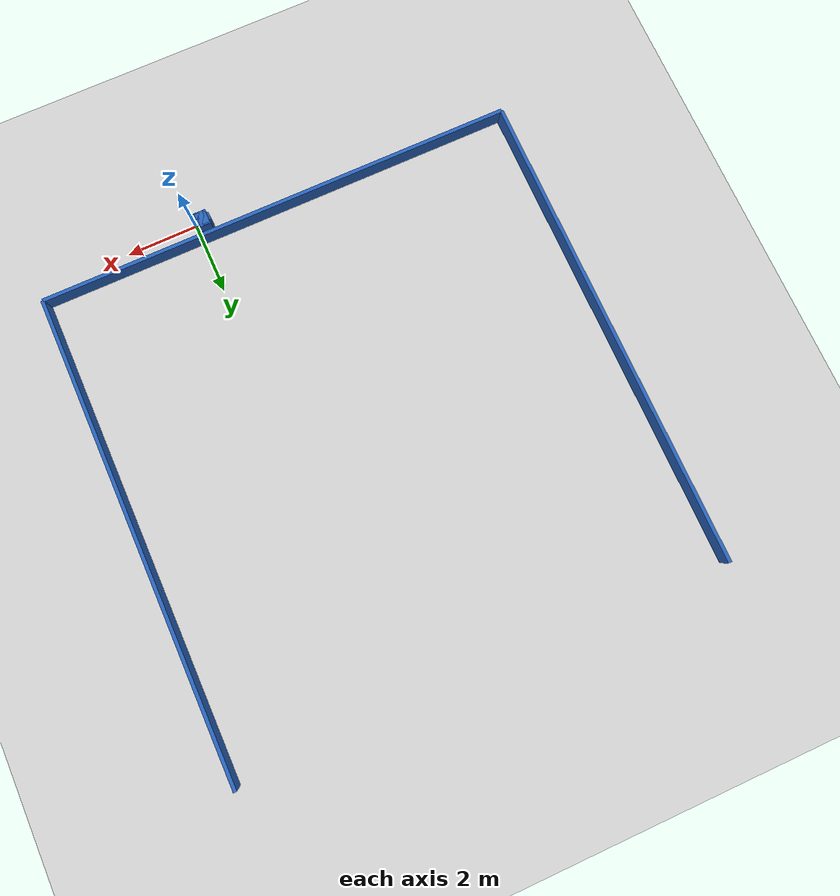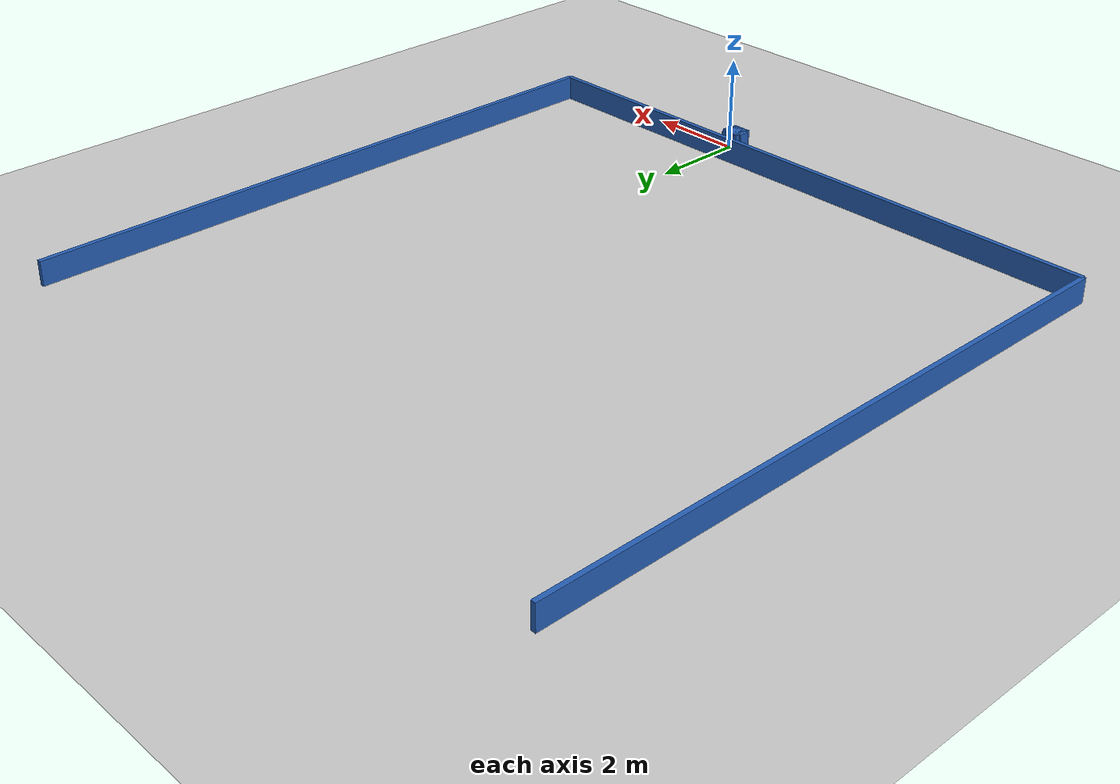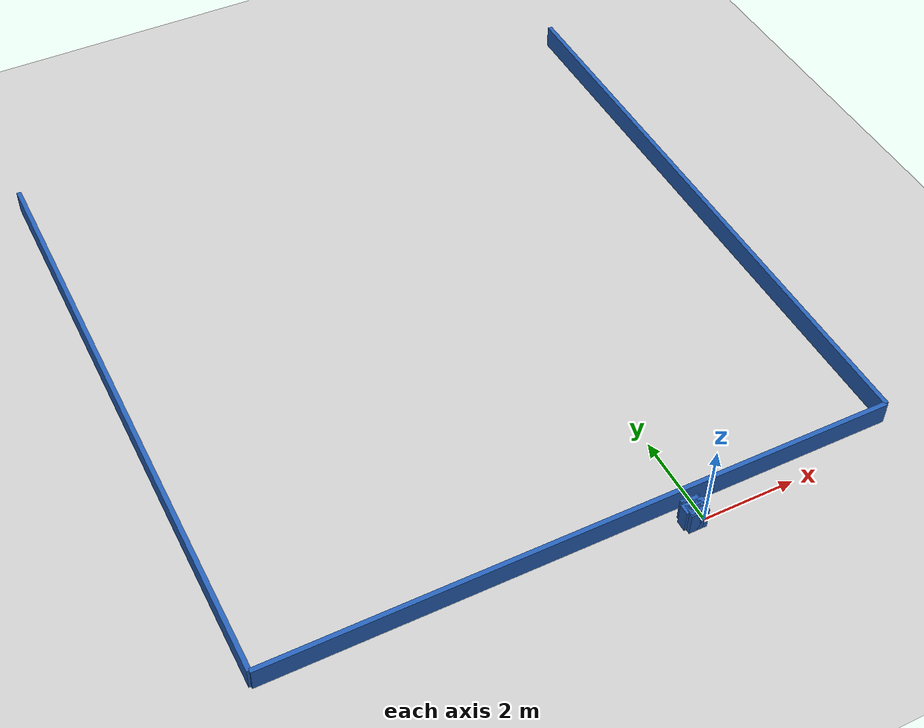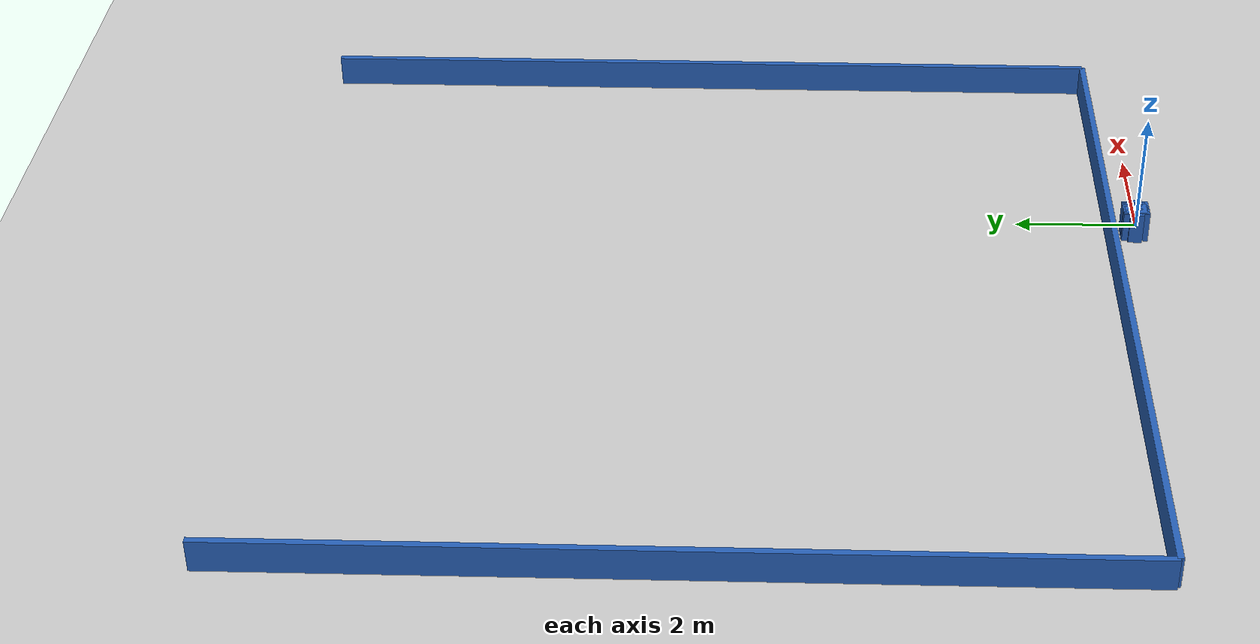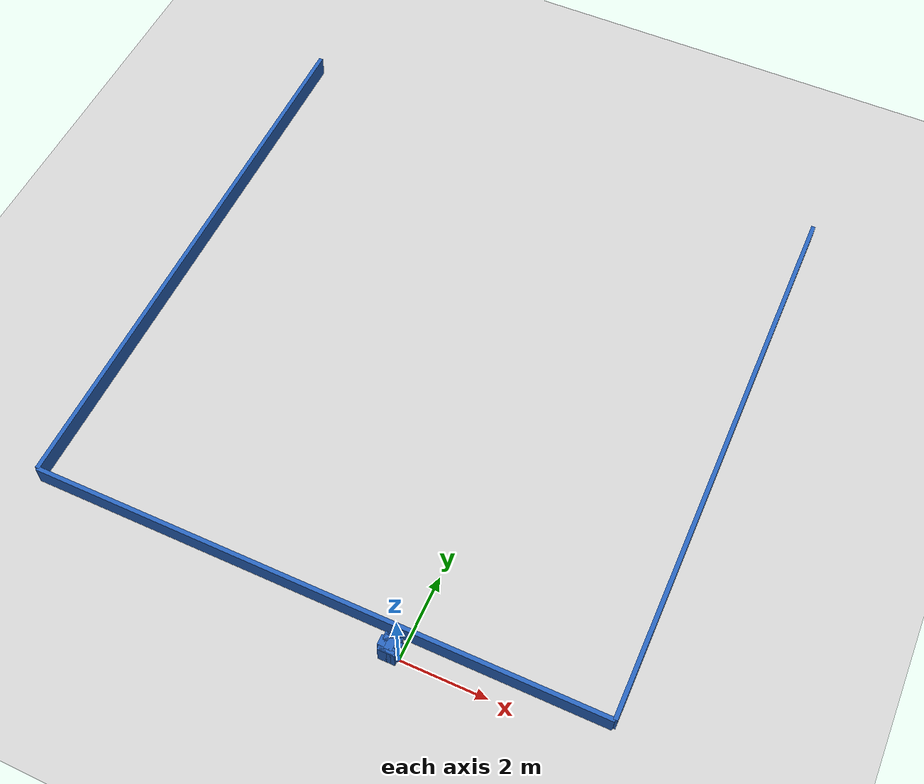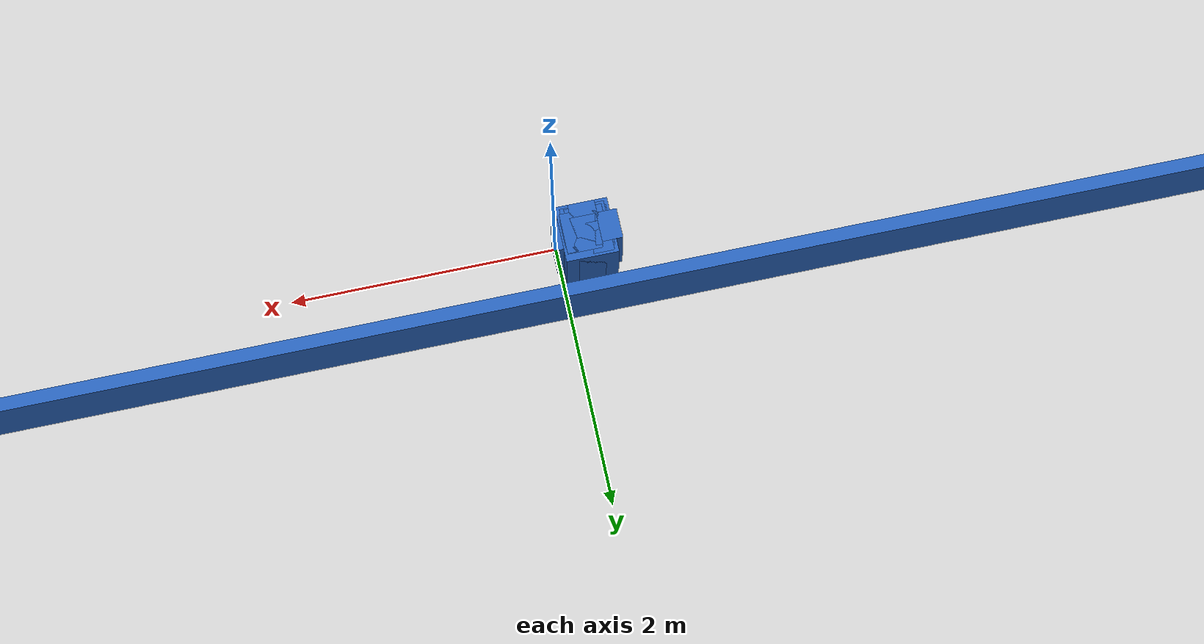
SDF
<?xml version="1.0" ?>
    <sdf version="1.5">
      <world name="default">
        <!-- A global light source -->
        <include>
          <uri>model://sun</uri>
        </include>
        <!-- A ground plane -->
        <include>
          <uri>model://ground_plane</uri>
        </include>

    <model name='libopen_space_final_T2B_81_89'>
      <static>1</static>
      <pose frame=''>-0.225000 0.075000 0.000000 0.000000 0.000000 0.000000</pose>
      <link name='link'>
        <inertial>
          <mass>1</mass>
          <inertia>
            <ixx>0.145833</ixx>
            <ixy>0</ixy>
            <ixz>0</ixz>
            <iyy>0.145833</iyy>
            <iyz>0</iyz>
            <izz>0.125</izz>
          </inertia>
        </inertial>
        <collision name='collision'>
          <geometry>
            <box>
              <size>0.35 0.32 1</size>
            </box>
          </geometry>
          <max_contacts>10</max_contacts>
          <surface>
            <contact>
              <ode/>
            </contact>
            <bounce/>
            <friction>
              <torsional>
                <ode/>
              </torsional>
              <ode/>
            </friction>
          </surface>
        </collision>
        <visual name='visual'>
          <geometry>
            <box>
              <size>0.35 0.32 1</size>
            </box>
          </geometry>
	    <material>
              <ambient>0.152000 0.379000 0.720000 1</ambient>
	      <diffuse>0.152000 0.379000 0.720000 1</diffuse>
          </material>
          <material>
            <script>
              <name>Gazebo/Grey</name>
              <uri>file://media/materials/scripts/gazebo.material</uri>
            </script>
          </material>
        </visual>
        <self_collide>0</self_collide>
        <kinematic>0</kinematic>
        <gravity>1</gravity>
      </link>
      <plugin name='libopen_space_final_T2B_81_89' filename='libopen_space_final_T2B_81_89.so'/>
    </model>

    <model name='libopen_space_final_T2B_112_28'>
      <static>1</static>
      <pose frame=''>-0.225000 0.075000 0.000000 0.000000 0.000000 0.000000</pose>
      <link name='link'>
        <inertial>
          <mass>1</mass>
          <inertia>
            <ixx>0.145833</ixx>
            <ixy>0</ixy>
            <ixz>0</ixz>
            <iyy>0.145833</iyy>
            <iyz>0</iyz>
            <izz>0.125</izz>
          </inertia>
        </inertial>
        <collision name='collision'>
          <geometry>
            <box>
              <size>0.18 0.27 1</size>
            </box>
          </geometry>
          <max_contacts>10</max_contacts>
          <surface>
            <contact>
              <ode/>
            </contact>
            <bounce/>
            <friction>
              <torsional>
                <ode/>
              </torsional>
              <ode/>
            </friction>
          </surface>
        </collision>
        <visual name='visual'>
          <geometry>
            <box>
              <size>0.18 0.27 1</size>
            </box>
          </geometry>
	    <material>
              <ambient>0.152000 0.379000 0.720000 1</ambient>
	      <diffuse>0.152000 0.379000 0.720000 1</diffuse>
          </material>
          <material>
            <script>
              <name>Gazebo/Grey</name>
              <uri>file://media/materials/scripts/gazebo.material</uri>
            </script>
          </material>
        </visual>
        <self_collide>0</self_collide>
        <kinematic>0</kinematic>
        <gravity>1</gravity>
      </link>
      <plugin name='libopen_space_final_T2B_112_28' filename='libopen_space_final_T2B_112_28.so'/>
    </model>

    <model name='libopen_space_final_T2B_67_47'>
      <static>1</static>
      <pose frame=''>-0.225000 0.075000 0.000000 0.000000 0.000000 0.000000</pose>
      <link name='link'>
        <inertial>
          <mass>1</mass>
          <inertia>
            <ixx>0.145833</ixx>
            <ixy>0</ixy>
            <ixz>0</ixz>
            <iyy>0.145833</iyy>
            <iyz>0</iyz>
            <izz>0.125</izz>
          </inertia>
        </inertial>
        <collision name='collision'>
          <geometry>
            <box>
              <size>0.20 0.43 1</size>
            </box>
          </geometry>
          <max_contacts>10</max_contacts>
          <surface>
            <contact>
              <ode/>
            </contact>
            <bounce/>
            <friction>
              <torsional>
                <ode/>
              </torsional>
              <ode/>
            </friction>
          </surface>
        </collision>
        <visual name='visual'>
          <geometry>
            <box>
              <size>0.20 0.43 1</size>
            </box>
          </geometry>
	    <material>
              <ambient>0.152000 0.379000 0.720000 1</ambient>
	      <diffuse>0.152000 0.379000 0.720000 1</diffuse>
          </material>
          <material>
            <script>
              <name>Gazebo/Grey</name>
              <uri>file://media/materials/scripts/gazebo.material</uri>
            </script>
          </material>
        </visual>
        <self_collide>0</self_collide>
        <kinematic>0</kinematic>
        <gravity>1</gravity>
      </link>
      <plugin name='libopen_space_final_T2B_67_47' filename='libopen_space_final_T2B_67_47.so'/>
    </model>

    <model name='libopen_space_final_T2B_129_21'>
      <static>1</static>
      <pose frame=''>-0.225000 0.075000 0.000000 0.000000 0.000000 0.000000</pose>
      <link name='link'>
        <inertial>
          <mass>1</mass>
          <inertia>
            <ixx>0.145833</ixx>
            <ixy>0</ixy>
            <ixz>0</ixz>
            <iyy>0.145833</iyy>
            <iyz>0</iyz>
            <izz>0.125</izz>
          </inertia>
        </inertial>
        <collision name='collision'>
          <geometry>
            <box>
              <size>0.49 0.23 1</size>
            </box>
          </geometry>
          <max_contacts>10</max_contacts>
          <surface>
            <contact>
              <ode/>
            </contact>
            <bounce/>
            <friction>
              <torsional>
                <ode/>
              </torsional>
              <ode/>
            </friction>
          </surface>
        </collision>
        <visual name='visual'>
          <geometry>
            <box>
              <size>0.49 0.23 1</size>
            </box>
          </geometry>
	    <material>
              <ambient>0.152000 0.379000 0.720000 1</ambient>
	      <diffuse>0.152000 0.379000 0.720000 1</diffuse>
          </material>
          <material>
            <script>
              <name>Gazebo/Grey</name>
              <uri>file://media/materials/scripts/gazebo.material</uri>
            </script>
          </material>
        </visual>
        <self_collide>0</self_collide>
        <kinematic>0</kinematic>
        <gravity>1</gravity>
      </link>
      <plugin name='libopen_space_final_T2B_129_21' filename='libopen_space_final_T2B_129_21.so'/>
    </model>

    <model name='libopen_space_final_T2B_112_81'>
      <static>1</static>
      <pose frame=''>-0.225000 0.075000 0.000000 0.000000 0.000000 0.000000</pose>
      <link name='link'>
        <inertial>
          <mass>1</mass>
          <inertia>
            <ixx>0.145833</ixx>
            <ixy>0</ixy>
            <ixz>0</ixz>
            <iyy>0.145833</iyy>
            <iyz>0</iyz>
            <izz>0.125</izz>
          </inertia>
        </inertial>
        <collision name='collision'>
          <geometry>
            <box>
              <size>0.24 0.22 1</size>
            </box>
          </geometry>
          <max_contacts>10</max_contacts>
          <surface>
            <contact>
              <ode/>
            </contact>
            <bounce/>
            <friction>
              <torsional>
                <ode/>
              </torsional>
              <ode/>
            </friction>
          </surface>
        </collision>
        <visual name='visual'>
          <geometry>
            <box>
              <size>0.24 0.22 1</size>
            </box>
          </geometry>
	    <material>
              <ambient>0.152000 0.379000 0.720000 1</ambient>
	      <diffuse>0.152000 0.379000 0.720000 1</diffuse>
          </material>
          <material>
            <script>
              <name>Gazebo/Grey</name>
              <uri>file://media/materials/scripts/gazebo.material</uri>
            </script>
          </material>
        </visual>
        <self_collide>0</self_collide>
        <kinematic>0</kinematic>
        <gravity>1</gravity>
      </link>
      <plugin name='libopen_space_final_T2B_112_81' filename='libopen_space_final_T2B_112_81.so'/>
    </model>

    <model name='libopen_space_final_T2B_111_18'>
      <static>1</static>
      <pose frame=''>-0.225000 0.075000 0.000000 0.000000 0.000000 0.000000</pose>
      <link name='link'>
        <inertial>
          <mass>1</mass>
          <inertia>
            <ixx>0.145833</ixx>
            <ixy>0</ixy>
            <ixz>0</ixz>
            <iyy>0.145833</iyy>
            <iyz>0</iyz>
            <izz>0.125</izz>
          </inertia>
        </inertial>
        <collision name='collision'>
          <geometry>
            <box>
              <size>0.27 0.37 1</size>
            </box>
          </geometry>
          <max_contacts>10</max_contacts>
          <surface>
            <contact>
              <ode/>
            </contact>
            <bounce/>
            <friction>
              <torsional>
                <ode/>
              </torsional>
              <ode/>
            </friction>
          </surface>
        </collision>
        <visual name='visual'>
          <geometry>
            <box>
              <size>0.27 0.37 1</size>
            </box>
          </geometry>
	    <material>
              <ambient>0.152000 0.379000 0.720000 1</ambient>
	      <diffuse>0.152000 0.379000 0.720000 1</diffuse>
          </material>
          <material>
            <script>
              <name>Gazebo/Grey</name>
              <uri>file://media/materials/scripts/gazebo.material</uri>
            </script>
          </material>
        </visual>
        <self_collide>0</self_collide>
        <kinematic>0</kinematic>
        <gravity>1</gravity>
      </link>
      <plugin name='libopen_space_final_T2B_111_18' filename='libopen_space_final_T2B_111_18.so'/>
    </model>

    <model name='libopen_space_final_T2B_83_17'>
      <static>1</static>
      <pose frame=''>-0.225000 0.075000 0.000000 0.000000 0.000000 0.000000</pose>
      <link name='link'>
        <inertial>
          <mass>1</mass>
          <inertia>
            <ixx>0.145833</ixx>
            <ixy>0</ixy>
            <ixz>0</ixz>
            <iyy>0.145833</iyy>
            <iyz>0</iyz>
            <izz>0.125</izz>
          </inertia>
        </inertial>
        <collision name='collision'>
          <geometry>
            <box>
              <size>0.29 0.35 1</size>
            </box>
          </geometry>
          <max_contacts>10</max_contacts>
          <surface>
            <contact>
              <ode/>
            </contact>
            <bounce/>
            <friction>
              <torsional>
                <ode/>
              </torsional>
              <ode/>
            </friction>
          </surface>
        </collision>
        <visual name='visual'>
          <geometry>
            <box>
              <size>0.29 0.35 1</size>
            </box>
          </geometry>
	    <material>
              <ambient>0.152000 0.379000 0.720000 1</ambient>
	      <diffuse>0.152000 0.379000 0.720000 1</diffuse>
          </material>
          <material>
            <script>
              <name>Gazebo/Grey</name>
              <uri>file://media/materials/scripts/gazebo.material</uri>
            </script>
          </material>
        </visual>
        <self_collide>0</self_collide>
        <kinematic>0</kinematic>
        <gravity>1</gravity>
      </link>
      <plugin name='libopen_space_final_T2B_83_17' filename='libopen_space_final_T2B_83_17.so'/>
    </model>

    <model name='libopen_space_final_T2B_51_63'>
      <static>1</static>
      <pose frame=''>-0.225000 0.075000 0.000000 0.000000 0.000000 0.000000</pose>
      <link name='link'>
        <inertial>
          <mass>1</mass>
          <inertia>
            <ixx>0.145833</ixx>
            <ixy>0</ixy>
            <ixz>0</ixz>
            <iyy>0.145833</iyy>
            <iyz>0</iyz>
            <izz>0.125</izz>
          </inertia>
        </inertial>
        <collision name='collision'>
          <geometry>
            <box>
              <size>0.33 0.39 1</size>
            </box>
          </geometry>
          <max_contacts>10</max_contacts>
          <surface>
            <contact>
              <ode/>
            </contact>
            <bounce/>
            <friction>
              <torsional>
                <ode/>
              </torsional>
              <ode/>
            </friction>
          </surface>
        </collision>
        <visual name='visual'>
          <geometry>
            <box>
              <size>0.33 0.39 1</size>
            </box>
          </geometry>
	    <material>
              <ambient>0.152000 0.379000 0.720000 1</ambient>
	      <diffuse>0.152000 0.379000 0.720000 1</diffuse>
          </material>
          <material>
            <script>
              <name>Gazebo/Grey</name>
              <uri>file://media/materials/scripts/gazebo.material</uri>
            </script>
          </material>
        </visual>
        <self_collide>0</self_collide>
        <kinematic>0</kinematic>
        <gravity>1</gravity>
      </link>
      <plugin name='libopen_space_final_T2B_51_63' filename='libopen_space_final_T2B_51_63.so'/>
    </model>

    <model name='libopen_space_final_T2B_73_9'>
      <static>1</static>
      <pose frame=''>-0.225000 0.075000 0.000000 0.000000 0.000000 0.000000</pose>
      <link name='link'>
        <inertial>
          <mass>1</mass>
          <inertia>
            <ixx>0.145833</ixx>
            <ixy>0</ixy>
            <ixz>0</ixz>
            <iyy>0.145833</iyy>
            <iyz>0</iyz>
            <izz>0.125</izz>
          </inertia>
        </inertial>
        <collision name='collision'>
          <geometry>
            <box>
              <size>0.13 0.37 1</size>
            </box>
          </geometry>
          <max_contacts>10</max_contacts>
          <surface>
            <contact>
              <ode/>
            </contact>
            <bounce/>
            <friction>
              <torsional>
                <ode/>
              </torsional>
              <ode/>
            </friction>
          </surface>
        </collision>
        <visual name='visual'>
          <geometry>
            <box>
              <size>0.13 0.37 1</size>
            </box>
          </geometry>
	    <material>
              <ambient>0.152000 0.379000 0.720000 1</ambient>
	      <diffuse>0.152000 0.379000 0.720000 1</diffuse>
          </material>
          <material>
            <script>
              <name>Gazebo/Grey</name>
              <uri>file://media/materials/scripts/gazebo.material</uri>
            </script>
          </material>
        </visual>
        <self_collide>0</self_collide>
        <kinematic>0</kinematic>
        <gravity>1</gravity>
      </link>
      <plugin name='libopen_space_final_T2B_73_9' filename='libopen_space_final_T2B_73_9.so'/>
    </model>

    <model name='libopen_space_final_T2B_67_46'>
      <static>1</static>
      <pose frame=''>-0.225000 0.075000 0.000000 0.000000 0.000000 0.000000</pose>
      <link name='link'>
        <inertial>
          <mass>1</mass>
          <inertia>
            <ixx>0.145833</ixx>
            <ixy>0</ixy>
            <ixz>0</ixz>
            <iyy>0.145833</iyy>
            <iyz>0</iyz>
            <izz>0.125</izz>
          </inertia>
        </inertial>
        <collision name='collision'>
          <geometry>
            <box>
              <size>0.39 0.43 1</size>
            </box>
          </geometry>
          <max_contacts>10</max_contacts>
          <surface>
            <contact>
              <ode/>
            </contact>
            <bounce/>
            <friction>
              <torsional>
                <ode/>
              </torsional>
              <ode/>
            </friction>
          </surface>
        </collision>
        <visual name='visual'>
          <geometry>
            <box>
              <size>0.39 0.43 1</size>
            </box>
          </geometry>
	    <material>
              <ambient>0.152000 0.379000 0.720000 1</ambient>
	      <diffuse>0.152000 0.379000 0.720000 1</diffuse>
          </material>
          <material>
            <script>
              <name>Gazebo/Grey</name>
              <uri>file://media/materials/scripts/gazebo.material</uri>
            </script>
          </material>
        </visual>
        <self_collide>0</self_collide>
        <kinematic>0</kinematic>
        <gravity>1</gravity>
      </link>
      <plugin name='libopen_space_final_T2B_67_46' filename='libopen_space_final_T2B_67_46.so'/>
    </model>

    <model name='libopen_space_final_T2B_90_76'>
      <static>1</static>
      <pose frame=''>-0.225000 0.075000 0.000000 0.000000 0.000000 0.000000</pose>
      <link name='link'>
        <inertial>
          <mass>1</mass>
          <inertia>
            <ixx>0.145833</ixx>
            <ixy>0</ixy>
            <ixz>0</ixz>
            <iyy>0.145833</iyy>
            <iyz>0</iyz>
            <izz>0.125</izz>
          </inertia>
        </inertial>
        <collision name='collision'>
          <geometry>
            <box>
              <size>0.35 0.31 1</size>
            </box>
          </geometry>
          <max_contacts>10</max_contacts>
          <surface>
            <contact>
              <ode/>
            </contact>
            <bounce/>
            <friction>
              <torsional>
                <ode/>
              </torsional>
              <ode/>
            </friction>
          </surface>
        </collision>
        <visual name='visual'>
          <geometry>
            <box>
              <size>0.35 0.31 1</size>
            </box>
          </geometry>
	    <material>
              <ambient>0.152000 0.379000 0.720000 1</ambient>
	      <diffuse>0.152000 0.379000 0.720000 1</diffuse>
          </material>
          <material>
            <script>
              <name>Gazebo/Grey</name>
              <uri>file://media/materials/scripts/gazebo.material</uri>
            </script>
          </material>
        </visual>
        <self_collide>0</self_collide>
        <kinematic>0</kinematic>
        <gravity>1</gravity>
      </link>
      <plugin name='libopen_space_final_T2B_90_76' filename='libopen_space_final_T2B_90_76.so'/>
    </model>

    <model name='libopen_space_final_T2B_140_77'>
      <static>1</static>
      <pose frame=''>-0.225000 0.075000 0.000000 0.000000 0.000000 0.000000</pose>
      <link name='link'>
        <inertial>
          <mass>1</mass>
          <inertia>
            <ixx>0.145833</ixx>
            <ixy>0</ixy>
            <ixz>0</ixz>
            <iyy>0.145833</iyy>
            <iyz>0</iyz>
            <izz>0.125</izz>
          </inertia>
        </inertial>
        <collision name='collision'>
          <geometry>
            <box>
              <size>0.18 0.10 1</size>
            </box>
          </geometry>
          <max_contacts>10</max_contacts>
          <surface>
            <contact>
              <ode/>
            </contact>
            <bounce/>
            <friction>
              <torsional>
                <ode/>
              </torsional>
              <ode/>
            </friction>
          </surface>
        </collision>
        <visual name='visual'>
          <geometry>
            <box>
              <size>0.18 0.10 1</size>
            </box>
          </geometry>
	    <material>
              <ambient>0.152000 0.379000 0.720000 1</ambient>
	      <diffuse>0.152000 0.379000 0.720000 1</diffuse>
          </material>
          <material>
            <script>
              <name>Gazebo/Grey</name>
              <uri>file://media/materials/scripts/gazebo.material</uri>
            </script>
          </material>
        </visual>
        <self_collide>0</self_collide>
        <kinematic>0</kinematic>
        <gravity>1</gravity>
      </link>
      <plugin name='libopen_space_final_T2B_140_77' filename='libopen_space_final_T2B_140_77.so'/>
    </model>

    <model name='libopen_space_final_T2B_57_87'>
      <static>1</static>
      <pose frame=''>-0.225000 0.075000 0.000000 0.000000 0.000000 0.000000</pose>
      <link name='link'>
        <inertial>
          <mass>1</mass>
          <inertia>
            <ixx>0.145833</ixx>
            <ixy>0</ixy>
            <ixz>0</ixz>
            <iyy>0.145833</iyy>
            <iyz>0</iyz>
            <izz>0.125</izz>
          </inertia>
        </inertial>
        <collision name='collision'>
          <geometry>
            <box>
              <size>0.36 0.22 1</size>
            </box>
          </geometry>
          <max_contacts>10</max_contacts>
          <surface>
            <contact>
              <ode/>
            </contact>
            <bounce/>
            <friction>
              <torsional>
                <ode/>
              </torsional>
              <ode/>
            </friction>
          </surface>
        </collision>
        <visual name='visual'>
          <geometry>
            <box>
              <size>0.36 0.22 1</size>
            </box>
          </geometry>
	    <material>
              <ambient>0.152000 0.379000 0.720000 1</ambient>
	      <diffuse>0.152000 0.379000 0.720000 1</diffuse>
          </material>
          <material>
            <script>
              <name>Gazebo/Grey</name>
              <uri>file://media/materials/scripts/gazebo.material</uri>
            </script>
          </material>
        </visual>
        <self_collide>0</self_collide>
        <kinematic>0</kinematic>
        <gravity>1</gravity>
      </link>
      <plugin name='libopen_space_final_T2B_57_87' filename='libopen_space_final_T2B_57_87.so'/>
    </model>

        <model name='bottom_wall'>
          <static>1</static>
          <pose frame=''>-2.25 0.5 0.000000 0.000000 0.000000 1.57079632</pose>
          <link name='link'>
            <inertial>
            <mass>1</mass>
            <inertia>
              <ixx>0.145833</ixx>
              <ixy>0</ixy>
              <ixz>0</ixz>
              <iyy>0.145833</iyy>
              <iyz>0</iyz>
              <izz>0.125</izz>
            </inertia>
            </inertial>
            <collision name='collision'>
            <geometry>
              <box>
              <size>0.1 13.5 1</size>
              </box>
            </geometry>
            <max_contacts>10</max_contacts>
            <surface>
              <contact>
              <ode/>
              </contact>
              <bounce/>
              <friction>
              <torsional>
                <ode/>
              </torsional>
              <ode/>
              </friction>
            </surface>
            </collision>
            <visual name='visual'>
            <geometry>
              <box>
              <size>0.1 13.5 1</size>
              </box>
            </geometry>
            <material>
              <ambient>0.152000 0.379000 0.720000 1</ambient>
            <diffuse>0.152000 0.379000 0.720000 1</diffuse>
            </material>
            <material>
              <script>
              <name>Gazebo/Grey</name>
              <uri>file://media/materials/scripts/gazebo.material</uri>
              </script>
            </material>
            </visual>
            <self_collide>0</self_collide>
            <kinematic>0</kinematic>
            <gravity>1</gravity>
          </link>
        </model>

        <model name='left_wall'>
          <static>1</static>
          <pose frame=''>-9 7.25 0.000000 0.000000 0.000000 0.000000</pose>
          <link name='link'>
            <inertial>
            <mass>1</mass>
            <inertia>
              <ixx>0.145833</ixx>
              <ixy>0</ixy>
              <ixz>0</ixz>
              <iyy>0.145833</iyy>
              <iyz>0</iyz>
              <izz>0.125</izz>
            </inertia>
            </inertial>
            <collision name='collision'>
            <geometry>
              <box>
              <size>0.1 13.5 1</size>
              </box>
            </geometry>
            <max_contacts>10</max_contacts>
            <surface>
              <contact>
              <ode/>
              </contact>
              <bounce/>
              <friction>
              <torsional>
                <ode/>
              </torsional>
              <ode/>
              </friction>
            </surface>
            </collision>
            <visual name='visual'>
            <geometry>
              <box>
              <size>0.1 13.5 1</size>
              </box>
            </geometry>
            <material>
              <ambient>0.152000 0.379000 0.720000 1</ambient>
            <diffuse>0.152000 0.379000 0.720000 1</diffuse>
            </material>
            <material>
              <script>
              <name>Gazebo/Grey</name>
              <uri>file://media/materials/scripts/gazebo.material</uri>
              </script>
            </material>
            </visual>
            <self_collide>0</self_collide>
            <kinematic>0</kinematic>
            <gravity>1</gravity>
          </link>
        </model>

        <model name='right_wall'>
          <static>1</static>
          <pose frame=''>4.5 7.25 0.000000 0.000000 0.000000 0.000000</pose>
          <link name='link'>
            <inertial>
            <mass>1</mass>
            <inertia>
              <ixx>0.145833</ixx>
              <ixy>0</ixy>
              <ixz>0</ixz>
              <iyy>0.145833</iyy>
              <iyz>0</iyz>
              <izz>0.125</izz>
            </inertia>
            </inertial>
            <collision name='collision'>
            <geometry>
              <box>
              <size>0.1 13.5 1</size>
              </box>
            </geometry>
            <max_contacts>10</max_contacts>
            <surface>
              <contact>
              <ode/>
              </contact>
              <bounce/>
              <friction>
              <torsional>
                <ode/>
              </torsional>
              <ode/>
              </friction>
            </surface>
            </collision>
            <visual name='visual'>
            <geometry>
              <box>
              <size>0.1 13.5 1</size>
              </box>
            </geometry>
            <material>
              <ambient>0.152000 0.379000 0.720000 1</ambient>
            <diffuse>0.152000 0.379000 0.720000 1</diffuse>
            </material>
            <material>
              <script>
              <name>Gazebo/Grey</name>
              <uri>file://media/materials/scripts/gazebo.material</uri>
              </script>
            </material>
            </visual>
            <self_collide>0</self_collide>
            <kinematic>0</kinematic>
            <gravity>1</gravity>
          </link>
        </model>

      </world>
    </sdf>"
